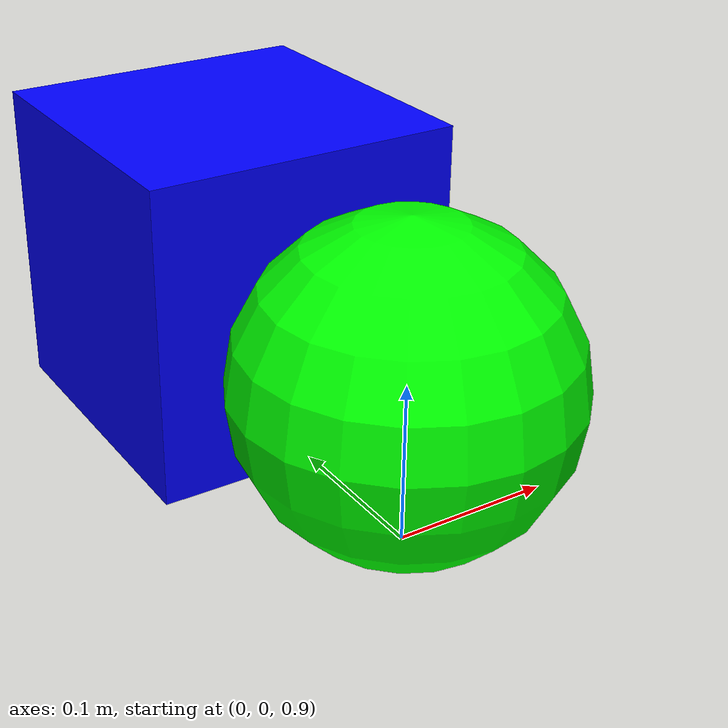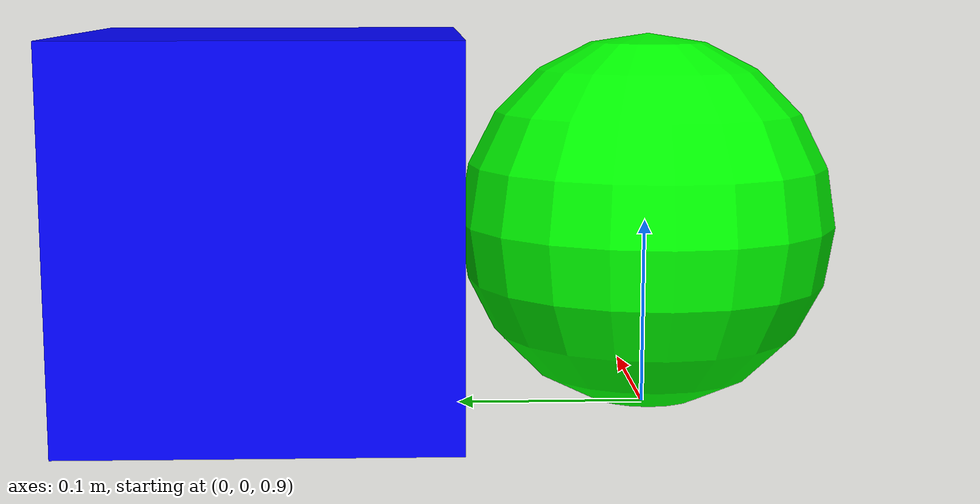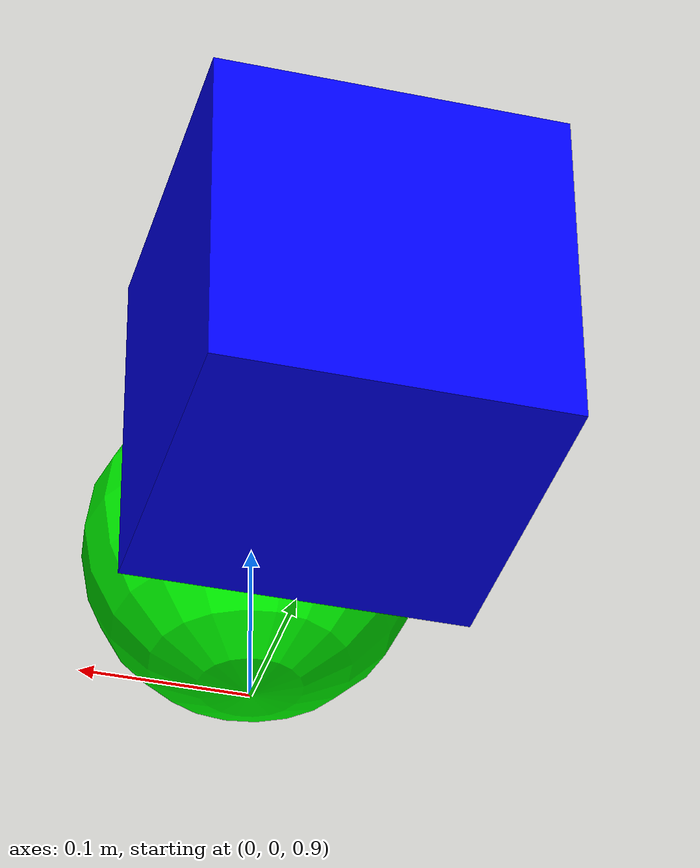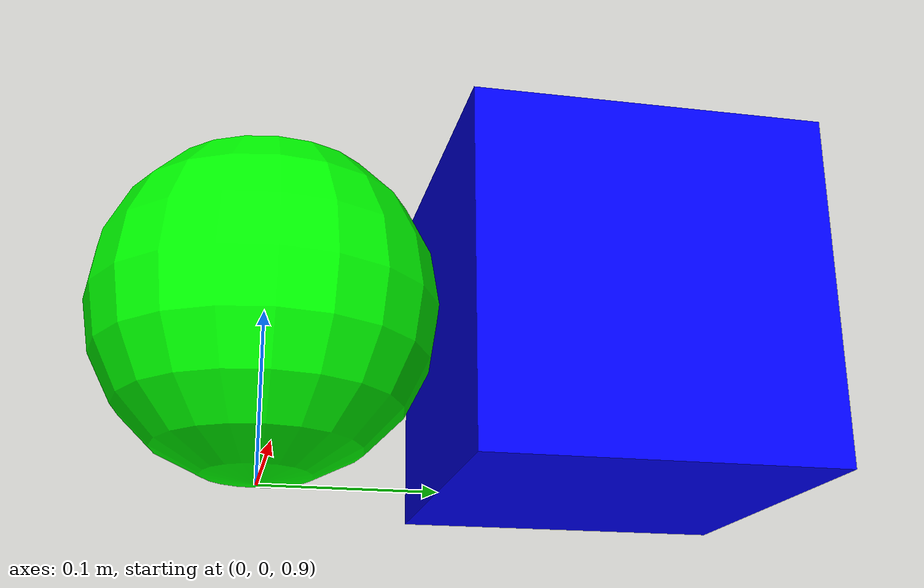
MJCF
<mujoco model="cube_falling">
    <option timestep="0.01" gravity="0 0 -9.81"/>
    <worldbody>
        <geom type="plane" size="5 5 0.1" rgba="0.5 0.5 0.5 1"/>
        <body name="cube2" pos="0 0 1">
            <joint name="Sphere" type="free"/>
            <geom type="sphere" size="0.1 0.1 0.1" mass="1" rgba="0 1 0 1"/>
        </body>
        <body name="cube" pos="0 0.2 1">
            <joint name="free_joint_cube" type="hinge"/>
            <geom type="box" size="0.1 0.1 0.1" mass="1" rgba="0 0 1 1"/>
        </body>
    </worldbody>

    <actuator>
        <motor joint="free_joint_cube" ctrlrange="-10 10" gear="1"/>
    </actuator>

</mujoco>
